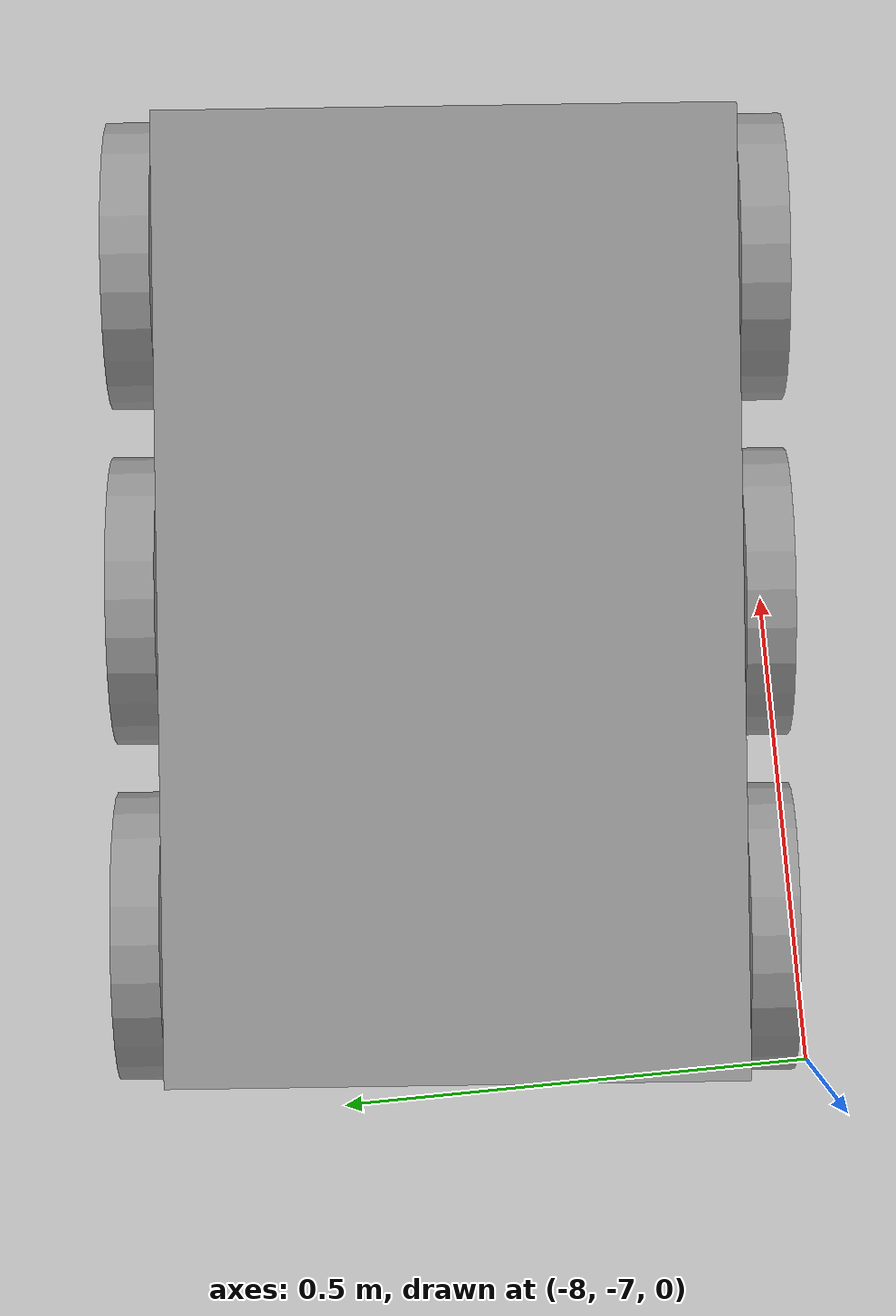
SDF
<sdf version="1.6">
 <world name="default">
  <model name="ground_plane">
   <static>1</static>
   <link name="link">
    <collision name="collision">
     <geometry><plane><normal>0 0 1</normal><size>100 100</size></plane></geometry>
     <surface>
      <contact><collide_bitmask>65535</collide_bitmask></contact>
      <friction><ode><mu>100</mu><mu2>50</mu2></ode></friction>
     </surface>
    </collision>
    <visual name="visual">
     <cast_shadows>0</cast_shadows>
     <geometry><plane><normal>0 0 1</normal><size>100 100</size></plane></geometry>
     <material>
      <script><uri>file://media/materials/scripts/gazebo.material</uri><name>Gazebo/Grey</name></script>
     </material>
    </visual>
   </link>
  </model>
  <model name="rover1">
   <link name="link_0">
    <inertial>
     <mass>1</mass>
     <inertia>
      <ixx>0.166667</ixx>
      <ixy>0</ixy>
      <ixz>0</ixz>
      <iyy>0.166667</iyy>
      <iyz>0</iyz>
      <izz>0.166667</izz>
     </inertia>
    </inertial>
    <pose>-0.000993 0.033414 0.112494 0 -0 1.5707</pose>
    <visual name="visual">
     <geometry><box><size>0.6 1 0.2</size></box></geometry>
     <material>
      <lighting>1</lighting>
      <script><uri>file://media/materials/scripts/gazebo.material</uri><name>Gazebo/Grey</name></script>
      <shader type="vertex"><normal_map>__default__</normal_map></shader>
      <ambient>0.3 0.3 0.3 1</ambient>
      <diffuse>0.7 0.7 0.7 1</diffuse>
      <specular>0.01 0.01 0.01 1</specular>
      <emissive>0 0 0 1</emissive>
     </material>
    </visual>
    <collision name="collision">
     <geometry><box><size>0.6 1 0.2</size></box></geometry>
     <surface>
      <friction>
       <ode><mu>1</mu><mu2>1</mu2><fdir1>0 0 0</fdir1><slip1>0</slip1><slip2>0</slip2></ode>
       <torsional>
        <coefficient>1</coefficient>
        <patch_radius>0</patch_radius>
        <surface_radius>0</surface_radius>
        <use_patch_radius>1</use_patch_radius>
        <ode><slip>0</slip></ode>
       </torsional>
      </friction>
      <bounce><restitution_coefficient>0</restitution_coefficient><threshold>1e+06</threshold></bounce>
      <contact>
       <collide_without_contact>0</collide_without_contact>
       <collide_without_contact_bitmask>1</collide_without_contact_bitmask>
       <collide_bitmask>1</collide_bitmask>
       <ode>
        <soft_cfm>0</soft_cfm>
        <soft_erp>0.2</soft_erp>
        <kp>1e+13</kp>
        <kd>1</kd>
        <max_vel>0.01</max_vel>
        <min_depth>0</min_depth>
       </ode>
       <bullet>
        <split_impulse>1</split_impulse>
        <split_impulse_penetration_threshold>-0.01</split_impulse_penetration_threshold>
        <soft_cfm>0</soft_cfm>
        <soft_erp>0.2</soft_erp>
        <kp>1e+13</kp>
        <kd>1</kd>
       </bullet>
      </contact>
     </surface>
    </collision>
   </link>
   <link name="link_1">
    <inertial>
     <mass>1</mass>
     <inertia><ixx>0.145833</ixx><ixy>0</ixy><ixz>0</ixz><iyy>0.145833</iyy><iyz>0</iyz><izz>0.125</izz></inertia>
    </inertial>
    <pose>-0.000993 -0.291648 0.102481 1.5707 -0 0</pose>
    <visual name="visual">
     <geometry><cylinder><radius>0.15</radius><length>0.05</length></cylinder></geometry>
     <material>
      <lighting>1</lighting>
      <script><uri>file://media/materials/scripts/gazebo.material</uri><name>Gazebo/Grey</name></script>
      <shader type="vertex"><normal_map>__default__</normal_map></shader>
      <ambient>0.3 0.3 0.3 1</ambient>
      <diffuse>0.7 0.7 0.7 1</diffuse>
      <specular>0.01 0.01 0.01 1</specular>
      <emissive>0 0 0 1</emissive>
     </material>
    </visual>
    <collision name="collision">
     <geometry><cylinder><radius>0.15</radius><length>0.05</length></cylinder></geometry>
     <surface>
      <friction>
       <ode><mu>1</mu><mu2>1</mu2><fdir1>0 0 0</fdir1><slip1>0</slip1><slip2>0</slip2></ode>
       <torsional>
        <coefficient>1</coefficient>
        <patch_radius>0</patch_radius>
        <surface_radius>0</surface_radius>
        <use_patch_radius>1</use_patch_radius>
        <ode><slip>0</slip></ode>
       </torsional>
      </friction>
      <bounce><restitution_coefficient>0</restitution_coefficient><threshold>1e+06</threshold></bounce>
      <contact>
       <collide_without_contact>0</collide_without_contact>
       <collide_without_contact_bitmask>1</collide_without_contact_bitmask>
       <collide_bitmask>1</collide_bitmask>
       <ode>
        <soft_cfm>0</soft_cfm>
        <soft_erp>0.2</soft_erp>
        <kp>1e+13</kp>
        <kd>1</kd>
        <max_vel>0.01</max_vel>
        <min_depth>0</min_depth>
       </ode>
       <bullet>
        <split_impulse>1</split_impulse>
        <split_impulse_penetration_threshold>-0.01</split_impulse_penetration_threshold>
        <soft_cfm>0</soft_cfm>
        <soft_erp>0.2</soft_erp>
        <kp>1e+13</kp>
        <kd>1</kd>
       </bullet>
      </contact>
     </surface>
    </collision>
   </link>
   <link name="link_1_clone">
    <inertial>
     <mass>1</mass>
     <inertia><ixx>0.145833</ixx><ixy>0</ixy><ixz>0</ixz><iyy>0.145833</iyy><iyz>0</iyz><izz>0.125</izz></inertia>
    </inertial>
    <pose>-0.351021 -0.291648 0.098131 1.5707 -0 0</pose>
    <visual name="visual">
     <geometry><cylinder><radius>0.15</radius><length>0.05</length></cylinder></geometry>
     <material>
      <lighting>1</lighting>
      <script><uri>file://media/materials/scripts/gazebo.material</uri><name>Gazebo/Grey</name></script>
      <shader type="vertex"><normal_map>__default__</normal_map></shader>
      <ambient>0.3 0.3 0.3 1</ambient>
      <diffuse>0.7 0.7 0.7 1</diffuse>
      <specular>0.01 0.01 0.01 1</specular>
      <emissive>0 0 0 1</emissive>
     </material>
    </visual>
    <collision name="collision">
     <geometry><cylinder><radius>0.15</radius><length>0.05</length></cylinder></geometry>
     <surface>
      <friction>
       <ode><mu>1</mu><mu2>1</mu2><fdir1>0 0 0</fdir1><slip1>0</slip1><slip2>0</slip2></ode>
       <torsional>
        <coefficient>1</coefficient>
        <patch_radius>0</patch_radius>
        <surface_radius>0</surface_radius>
        <use_patch_radius>1</use_patch_radius>
        <ode><slip>0</slip></ode>
       </torsional>
      </friction>
      <bounce><restitution_coefficient>0</restitution_coefficient><threshold>1e+06</threshold></bounce>
      <contact>
       <collide_without_contact>0</collide_without_contact>
       <collide_without_contact_bitmask>1</collide_without_contact_bitmask>
       <collide_bitmask>1</collide_bitmask>
       <ode>
        <soft_cfm>0</soft_cfm>
        <soft_erp>0.2</soft_erp>
        <kp>1e+13</kp>
        <kd>1</kd>
        <max_vel>0.01</max_vel>
        <min_depth>0</min_depth>
       </ode>
       <bullet>
        <split_impulse>1</split_impulse>
        <split_impulse_penetration_threshold>-0.01</split_impulse_penetration_threshold>
        <soft_cfm>0</soft_cfm>
        <soft_erp>0.2</soft_erp>
        <kp>1e+13</kp>
        <kd>1</kd>
       </bullet>
      </contact>
     </surface>
    </collision>
   </link>
   <link name="link_1_clone_0">
    <inertial>
     <mass>1</mass>
     <inertia><ixx>0.145833</ixx><ixy>0</ixy><ixz>0</ixz><iyy>0.145833</iyy><iyz>0</iyz><izz>0.125</izz></inertia>
    </inertial>
    <pose>0.349036 -0.291648 0.102492 1.5707 -0 0</pose>
    <visual name="visual">
     <geometry><cylinder><radius>0.15</radius><length>0.05</length></cylinder></geometry>
     <material>
      <lighting>1</lighting>
      <script><uri>file://media/materials/scripts/gazebo.material</uri><name>Gazebo/Grey</name></script>
      <shader type="vertex"><normal_map>__default__</normal_map></shader>
      <ambient>0.3 0.3 0.3 1</ambient>
      <diffuse>0.7 0.7 0.7 1</diffuse>
      <specular>0.01 0.01 0.01 1</specular>
      <emissive>0 0 0 1</emissive>
     </material>
    </visual>
    <collision name="collision">
     <geometry><cylinder><radius>0.15</radius><length>0.05</length></cylinder></geometry>
     <surface>
      <friction>
       <ode><mu>1</mu><mu2>1</mu2><fdir1>0 0 0</fdir1><slip1>0</slip1><slip2>0</slip2></ode>
       <torsional>
        <coefficient>1</coefficient>
        <patch_radius>0</patch_radius>
        <surface_radius>0</surface_radius>
        <use_patch_radius>1</use_patch_radius>
        <ode><slip>0</slip></ode>
       </torsional>
      </friction>
      <bounce><restitution_coefficient>0</restitution_coefficient><threshold>1e+06</threshold></bounce>
      <contact>
       <collide_without_contact>0</collide_without_contact>
       <collide_without_contact_bitmask>1</collide_without_contact_bitmask>
       <collide_bitmask>1</collide_bitmask>
       <ode>
        <soft_cfm>0</soft_cfm>
        <soft_erp>0.2</soft_erp>
        <kp>1e+13</kp>
        <kd>1</kd>
        <max_vel>0.01</max_vel>
        <min_depth>0</min_depth>
       </ode>
       <bullet>
        <split_impulse>1</split_impulse>
        <split_impulse_penetration_threshold>-0.01</split_impulse_penetration_threshold>
        <soft_cfm>0</soft_cfm>
        <soft_erp>0.2</soft_erp>
        <kp>1e+13</kp>
        <kd>1</kd>
       </bullet>
      </contact>
     </surface>
    </collision>
   </link>
   <link name="link_1_clone_1">
    <inertial>
     <mass>1</mass>
     <inertia><ixx>0.145833</ixx><ixy>0</ixy><ixz>0</ixz><iyy>0.145833</iyy><iyz>0</iyz><izz>0.125</izz></inertia>
    </inertial>
    <pose>-0.351022 0.358477 0.102492 1.5707 -0 0</pose>
    <visual name="visual">
     <geometry><cylinder><radius>0.15</radius><length>0.05</length></cylinder></geometry>
     <material>
      <lighting>1</lighting>
      <script><uri>file://media/materials/scripts/gazebo.material</uri><name>Gazebo/Grey</name></script>
      <shader type="vertex"><normal_map>__default__</normal_map></shader>
      <ambient>0.3 0.3 0.3 1</ambient>
      <diffuse>0.7 0.7 0.7 1</diffuse>
      <specular>0.01 0.01 0.01 1</specular>
      <emissive>0 0 0 1</emissive>
     </material>
    </visual>
    <collision name="collision">
     <geometry><cylinder><radius>0.15</radius><length>0.05</length></cylinder></geometry>
     <surface>
      <friction>
       <ode><mu>1</mu><mu2>1</mu2><fdir1>0 0 0</fdir1><slip1>0</slip1><slip2>0</slip2></ode>
       <torsional>
        <coefficient>1</coefficient>
        <patch_radius>0</patch_radius>
        <surface_radius>0</surface_radius>
        <use_patch_radius>1</use_patch_radius>
        <ode><slip>0</slip></ode>
       </torsional>
      </friction>
      <bounce><restitution_coefficient>0</restitution_coefficient><threshold>1e+06</threshold></bounce>
      <contact>
       <collide_without_contact>0</collide_without_contact>
       <collide_without_contact_bitmask>1</collide_without_contact_bitmask>
       <collide_bitmask>1</collide_bitmask>
       <ode>
        <soft_cfm>0</soft_cfm>
        <soft_erp>0.2</soft_erp>
        <kp>1e+13</kp>
        <kd>1</kd>
        <max_vel>0.01</max_vel>
        <min_depth>0</min_depth>
       </ode>
       <bullet>
        <split_impulse>1</split_impulse>
        <split_impulse_penetration_threshold>-0.01</split_impulse_penetration_threshold>
        <soft_cfm>0</soft_cfm>
        <soft_erp>0.2</soft_erp>
        <kp>1e+13</kp>
        <kd>1</kd>
       </bullet>
      </contact>
     </surface>
    </collision>
   </link>
   <link name="link_1_clone_2">
    <inertial>
     <mass>1</mass>
     <inertia><ixx>0.145833</ixx><ixy>0</ixy><ixz>0</ixz><iyy>0.145833</iyy><iyz>0</iyz><izz>0.125</izz></inertia>
    </inertial>
    <pose>-0.000993 0.358477 0.102492 1.5707 -0 0</pose>
    <visual name="visual">
     <geometry><cylinder><radius>0.15</radius><length>0.05</length></cylinder></geometry>
     <material>
      <lighting>1</lighting>
      <script><uri>file://media/materials/scripts/gazebo.material</uri><name>Gazebo/Grey</name></script>
      <shader type="vertex"><normal_map>__default__</normal_map></shader>
      <ambient>0.3 0.3 0.3 1</ambient>
      <diffuse>0.7 0.7 0.7 1</diffuse>
      <specular>0.01 0.01 0.01 1</specular>
      <emissive>0 0 0 1</emissive>
     </material>
    </visual>
    <collision name="collision">
     <geometry><cylinder><radius>0.15</radius><length>0.05</length></cylinder></geometry>
     <surface>
      <friction>
       <ode><mu>1</mu><mu2>1</mu2><fdir1>0 0 0</fdir1><slip1>0</slip1><slip2>0</slip2></ode>
       <torsional>
        <coefficient>1</coefficient>
        <patch_radius>0</patch_radius>
        <surface_radius>0</surface_radius>
        <use_patch_radius>1</use_patch_radius>
        <ode><slip>0</slip></ode>
       </torsional>
      </friction>
      <bounce><restitution_coefficient>0</restitution_coefficient><threshold>1e+06</threshold></bounce>
      <contact>
       <collide_without_contact>0</collide_without_contact>
       <collide_without_contact_bitmask>1</collide_without_contact_bitmask>
       <collide_bitmask>1</collide_bitmask>
       <ode>
        <soft_cfm>0</soft_cfm>
        <soft_erp>0.2</soft_erp>
        <kp>1e+13</kp>
        <kd>1</kd>
        <max_vel>0.01</max_vel>
        <min_depth>0</min_depth>
       </ode>
       <bullet>
        <split_impulse>1</split_impulse>
        <split_impulse_penetration_threshold>-0.01</split_impulse_penetration_threshold>
        <soft_cfm>0</soft_cfm>
        <soft_erp>0.2</soft_erp>
        <kp>1e+13</kp>
        <kd>1</kd>
       </bullet>
      </contact>
     </surface>
    </collision>
   </link>
   <link name="link_1_clone_3">
    <inertial>
     <mass>1</mass>
     <inertia><ixx>0.145833</ixx><ixy>0</ixy><ixz>0</ixz><iyy>0.145833</iyy><iyz>0</iyz><izz>0.125</izz></inertia>
    </inertial>
    <pose>0.349036 0.358477 0.102492 1.5707 -0 0</pose>
    <visual name="visual">
     <geometry><cylinder><radius>0.15</radius><length>0.05</length></cylinder></geometry>
     <material>
      <lighting>1</lighting>
      <script><uri>file://media/materials/scripts/gazebo.material</uri><name>Gazebo/Grey</name></script>
      <shader type="vertex"><normal_map>__default__</normal_map></shader>
      <ambient>0.3 0.3 0.3 1</ambient>
      <diffuse>0.7 0.7 0.7 1</diffuse>
      <specular>0.01 0.01 0.01 1</specular>
      <emissive>0 0 0 1</emissive>
     </material>
    </visual>
    <collision name="collision">
     <geometry><cylinder><radius>0.15</radius><length>0.05</length></cylinder></geometry>
     <surface>
      <friction>
       <ode><mu>1</mu><mu2>1</mu2><fdir1>0 0 0</fdir1><slip1>0</slip1><slip2>0</slip2></ode>
       <torsional>
        <coefficient>1</coefficient>
        <patch_radius>0</patch_radius>
        <surface_radius>0</surface_radius>
        <use_patch_radius>1</use_patch_radius>
        <ode><slip>0</slip></ode>
       </torsional>
      </friction>
      <bounce><restitution_coefficient>0</restitution_coefficient><threshold>1e+06</threshold></bounce>
      <contact>
       <collide_without_contact>0</collide_without_contact>
       <collide_without_contact_bitmask>1</collide_without_contact_bitmask>
       <collide_bitmask>1</collide_bitmask>
       <ode>
        <soft_cfm>0</soft_cfm>
        <soft_erp>0.2</soft_erp>
        <kp>1e+13</kp>
        <kd>1</kd>
        <max_vel>0.01</max_vel>
        <min_depth>0</min_depth>
       </ode>
       <bullet>
        <split_impulse>1</split_impulse>
        <split_impulse_penetration_threshold>-0.01</split_impulse_penetration_threshold>
        <soft_cfm>0</soft_cfm>
        <soft_erp>0.2</soft_erp>
        <kp>1e+13</kp>
        <kd>1</kd>
       </bullet>
      </contact>
     </surface>
    </collision>
   </link>
   <joint name="link_0_JOINT_1" type="revolute">
    <parent>link_0</parent>
    <child>link_1</child>
    <axis>
     <xyz>0 0 1</xyz>
     <use_parent_model_frame>0</use_parent_model_frame>
     <limit>
      <lower>-1.79769e+308</lower>
      <upper>1.79769e+308</upper>
      <effort>-1</effort>
      <velocity>-1</velocity>
     </limit>
     <dynamics>
      <spring_reference>0</spring_reference>
      <spring_stiffness>0</spring_stiffness>
      <damping>0</damping>
     </dynamics>
    </axis>
    <physics>
     <ode><limit><cfm>0</cfm><erp>0.2</erp></limit><suspension><cfm>0</cfm><erp>0.2</erp></suspension></ode>
    </physics>
   </joint>
   <joint name="link_0_JOINT_2" type="revolute">
    <parent>link_0</parent>
    <child>link_1_clone_0</child>
    <axis>
     <xyz>0 0 1</xyz>
     <use_parent_model_frame>0</use_parent_model_frame>
     <limit>
      <lower>-1.79769e+308</lower>
      <upper>1.79769e+308</upper>
      <effort>-1</effort>
      <velocity>-1</velocity>
     </limit>
     <dynamics>
      <spring_reference>0</spring_reference>
      <spring_stiffness>0</spring_stiffness>
      <damping>0</damping>
     </dynamics>
    </axis>
    <physics>
     <ode><limit><cfm>0</cfm><erp>0.2</erp></limit><suspension><cfm>0</cfm><erp>0.2</erp></suspension></ode>
    </physics>
   </joint>
   <joint name="link_0_JOINT_3" type="revolute">
    <parent>link_0</parent>
    <child>link_1_clone_1</child>
    <axis>
     <xyz>0 0 1</xyz>
     <use_parent_model_frame>0</use_parent_model_frame>
     <limit>
      <lower>-1.79769e+308</lower>
      <upper>1.79769e+308</upper>
      <effort>-1</effort>
      <velocity>-1</velocity>
     </limit>
     <dynamics>
      <spring_reference>0</spring_reference>
      <spring_stiffness>0</spring_stiffness>
      <damping>0</damping>
     </dynamics>
    </axis>
    <physics>
     <ode><limit><cfm>0</cfm><erp>0.2</erp></limit><suspension><cfm>0</cfm><erp>0.2</erp></suspension></ode>
    </physics>
   </joint>
   <joint name="link_0_JOINT_4" type="revolute">
    <parent>link_0</parent>
    <child>link_1_clone_2</child>
    <axis>
     <xyz>0 0 1</xyz>
     <use_parent_model_frame>0</use_parent_model_frame>
     <limit>
      <lower>-1.79769e+308</lower>
      <upper>1.79769e+308</upper>
      <effort>-1</effort>
      <velocity>-1</velocity>
     </limit>
     <dynamics>
      <spring_reference>0</spring_reference>
      <spring_stiffness>0</spring_stiffness>
      <damping>0</damping>
     </dynamics>
    </axis>
    <physics>
     <ode><limit><cfm>0</cfm><erp>0.2</erp></limit><suspension><cfm>0</cfm><erp>0.2</erp></suspension></ode>
    </physics>
   </joint>
   <joint name="link_0_JOINT_5" type="revolute">
    <parent>link_0</parent>
    <child>link_1_clone_3</child>
    <axis>
     <xyz>1 0 0</xyz>
     <use_parent_model_frame>0</use_parent_model_frame>
     <limit>
      <lower>-1.79769e+308</lower>
      <upper>1.79769e+308</upper>
      <effort>-1</effort>
      <velocity>-1</velocity>
     </limit>
     <dynamics>
      <spring_reference>0</spring_reference>
      <spring_stiffness>0</spring_stiffness>
      <damping>0</damping>
     </dynamics>
    </axis>
    <physics>
     <ode><limit><cfm>0</cfm><erp>0.2</erp></limit><suspension><cfm>0</cfm><erp>0.2</erp></suspension></ode>
    </physics>
   </joint>
   <joint name="link_1_clone_JOINT_0" type="revolute">
    <parent>link_0</parent>
    <child>link_1_clone</child>
    <axis>
     <xyz>0 0 1</xyz>
     <use_parent_model_frame>0</use_parent_model_frame>
     <limit>
      <lower>-1.79769e+308</lower>
      <upper>1.79769e+308</upper>
      <effort>-1</effort>
      <velocity>-1</velocity>
     </limit>
     <dynamics>
      <spring_reference>0</spring_reference>
      <spring_stiffness>0</spring_stiffness>
      <damping>0</damping>
     </dynamics>
    </axis>
    <physics>
     <ode><limit><cfm>0</cfm><erp>0.2</erp></limit><suspension><cfm>0</cfm><erp>0.2</erp></suspension></ode>
    </physics>
   </joint>
   <static>0</static>
   <pose>-7.46591 -6.7008 0.049684 -5.7e-05 0.006192 -0.084067</pose>
  </model>
 </world>
</sdf>
